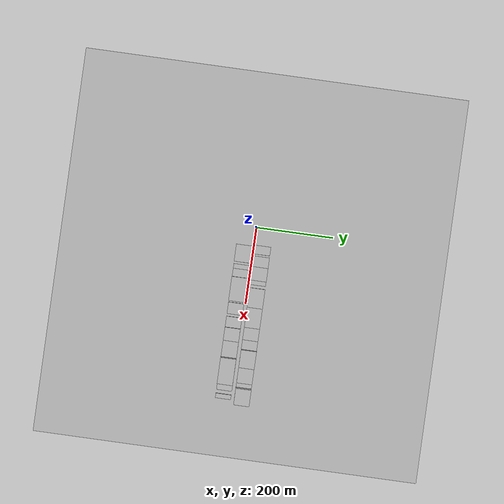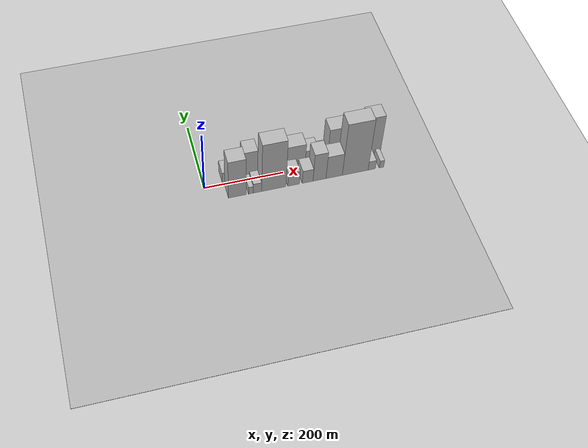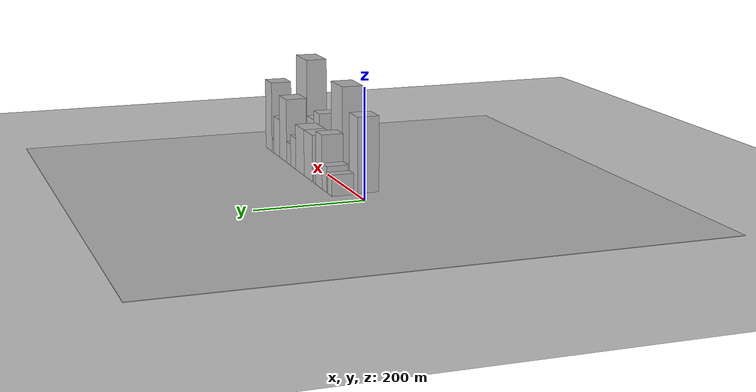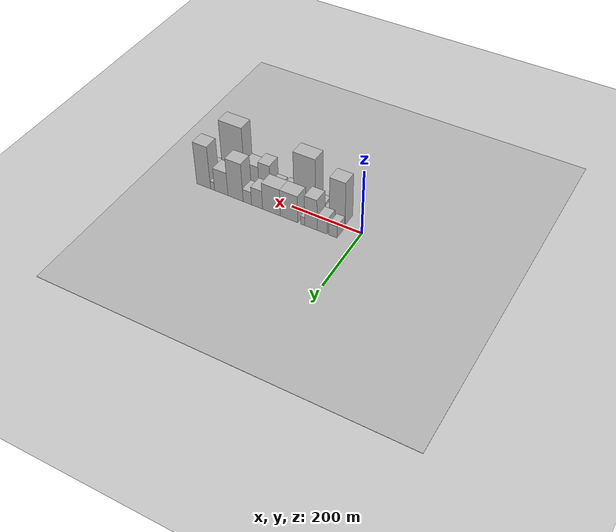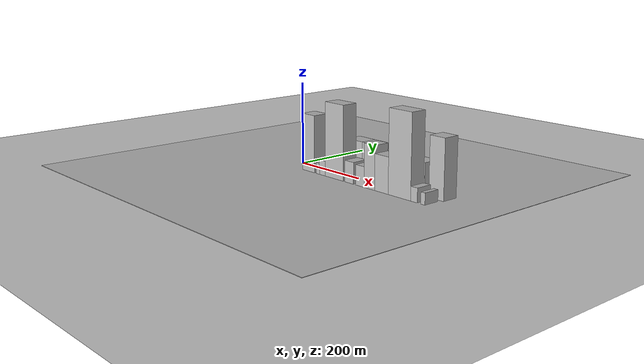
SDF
<?xml version="1.0" encoding="utf-8"?>

<sdf version="1.6">

   <world name="default">

      <gui fullscreen="0">

         <camera name="user_camera">

            <pose>-15 0 4.57585 0 0 0</pose>

            <view_controller>orbit</view_controller>

         </camera>

      </gui>

      <scene>

         <sky>

           <clouds>

             <speed>12</speed>

           </clouds>

         </sky>

         <ambient>0.4 0.4 0.4 1</ambient>

         <background>0.7 0.7 0.7 1</background>

         <shadows>1</shadows>

      </scene>

      <gravity>0 0 -9.8066</gravity>

      <magnetic_field>6e-06 2.3e-05 -4.2e-05</magnetic_field>

      <physics default="0" name="default_physics" type="ode">

         <ode>

            <solver>

               <type>quick</type>

               <iters>10</iters>

               <sor>1.0</sor>

               <use_dynamic_moi_rescaling>0</use_dynamic_moi_rescaling>

            </solver>

            <constraints>

               <cfm>0</cfm>

               <erp>0.2</erp>

               <contact_max_correcting_vel>100</contact_max_correcting_vel>

               <contact_surface_layer>0.001</contact_surface_layer>

            </constraints>

         </ode>

         <max_step_size>0.004</max_step_size>

         <real_time_factor>1</real_time_factor>

         <real_time_update_rate>250</real_time_update_rate>

      </physics>

      <light name="sun" type="directional">

         <cast_shadows>1</cast_shadows>

         <pose>0 0 10 0 0 0</pose>

         <diffuse>0.8 0.8 0.8 1</diffuse>

         <specular>0.2 0.2 0.2 1</specular>

         <attenuation>

            <range>1000</range>

            <constant>0.9</constant>

            <linear>0.01</linear>

            <quadratic>0.001</quadratic>

         </attenuation>

         <direction>-0.5 0.1 -0.9</direction>

      </light>

      <include>

         <name>ground_plane_1</name>

         <uri>model://HANNAS_ground_plane</uri>

         <pose>0 0 0  0 0 0</pose>

      </include>

      <include>

         <name>ground_plane_2</name>

         <uri>model://HANNAS_ground_plane</uri>

         <pose>100 0 0  0 0 0</pose>

      </include>

      <model name="building_1">

         <static>1</static>

         <pose frame="">57.4059 24.5000 0 0.000000 0.000000 1.570796</pose>

         <link name="link">

            <pose frame="">0 0 19.50 0 0 0</pose>

            <collision name="collision">

               <geometry>

                  <box>

                     <size>40.0000 22.8118 39.0000</size>

                  </box>

               </geometry>

               <max_contacts>10</max_contacts>

               <surface>

                  <contact>

                     <ode/>

                  </contact>

                  <bounce/>

                  <friction>

                     <torsional>

                        <ode/>

                     </torsional>

                     <ode/>

                  </friction>

               </surface>

            </collision>

            <visual name="visual">

               <cast_shadows>0</cast_shadows>

               <geometry>

                  <box>

                     <size>40.0000 22.8118 39.0000</size>

                  </box>

               </geometry>

               <material>

                  <script>

                     <uri>model://HANNAS_wall/materials/scripts</uri>

                     <uri>model://HANNAS_wall/materials/textures</uri>

                     <name>vrc/HANNAS_wall</name>

                  </script>

               </material>

            </visual>

            <self_collide>0</self_collide>

            <enable_wind>0</enable_wind>

            <kinematic>0</kinematic>

         </link>

      </model>

      <model name="building_2">

         <static>1</static>

         <pose frame="">87.6651 24.5000 0 0.000000 0.000000 1.570796</pose>

         <link name="link">

            <pose frame="">0 0 24.00 0 0 0</pose>

            <collision name="collision">

               <geometry>

                  <box>

                     <size>40.0000 27.7066 48.0000</size>

                  </box>

               </geometry>

               <max_contacts>10</max_contacts>

               <surface>

                  <contact>

                     <ode/>

                  </contact>

                  <bounce/>

                  <friction>

                     <torsional>

                        <ode/>

                     </torsional>

                     <ode/>

                  </friction>

               </surface>

            </collision>

            <visual name="visual">

               <cast_shadows>0</cast_shadows>

               <geometry>

                  <box>

                     <size>40.0000 27.7066 48.0000</size>

                  </box>

               </geometry>

               <material>

                  <script>

                     <uri>model://HANNAS_wall/materials/scripts</uri>

                     <uri>model://HANNAS_wall/materials/textures</uri>

                     <name>vrc/HANNAS_wall</name>

                  </script>

               </material>

            </visual>

            <self_collide>0</self_collide>

            <enable_wind>0</enable_wind>

            <kinematic>0</kinematic>

         </link>

      </model>

      <model name="building_3">

         <static>1</static>

         <pose frame="">119.0277 24.5000 0 0.000000 0.000000 1.570796</pose>

         <link name="link">

            <pose frame="">0 0 49.50 0 0 0</pose>

            <collision name="collision">

               <geometry>

                  <box>

                     <size>40.0000 35.0186 99.0000</size>

                  </box>

               </geometry>

               <max_contacts>10</max_contacts>

               <surface>

                  <contact>

                     <ode/>

                  </contact>

                  <bounce/>

                  <friction>

                     <torsional>

                        <ode/>

                     </torsional>

                     <ode/>

                  </friction>

               </surface>

            </collision>

            <visual name="visual">

               <cast_shadows>0</cast_shadows>

               <geometry>

                  <box>

                     <size>40.0000 35.0186 99.0000</size>

                  </box>

               </geometry>

               <material>

                  <script>

                     <uri>model://HANNAS_wall/materials/scripts</uri>

                     <uri>model://HANNAS_wall/materials/textures</uri>

                     <name>vrc/HANNAS_wall</name>

                  </script>

               </material>

            </visual>

            <self_collide>0</self_collide>

            <enable_wind>0</enable_wind>

            <kinematic>0</kinematic>

         </link>

      </model>

      <model name="building_4">

         <static>1</static>

         <pose frame="">142.4382 24.5000 0 0.000000 0.000000 1.570796</pose>

         <link name="link">

            <pose frame="">0 0 13.50 0 0 0</pose>

            <collision name="collision">

               <geometry>

                  <box>

                     <size>40.0000 11.8025 27.0000</size>

                  </box>

               </geometry>

               <max_contacts>10</max_contacts>

               <surface>

                  <contact>

                     <ode/>

                  </contact>

                  <bounce/>

                  <friction>

                     <torsional>

                        <ode/>

                     </torsional>

                     <ode/>

                  </friction>

               </surface>

            </collision>

            <visual name="visual">

               <cast_shadows>0</cast_shadows>

               <geometry>

                  <box>

                     <size>40.0000 11.8025 27.0000</size>

                  </box>

               </geometry>

               <material>

                  <script>

                     <uri>model://HANNAS_wall/materials/scripts</uri>

                     <uri>model://HANNAS_wall/materials/textures</uri>

                     <name>vrc/HANNAS_wall</name>

                  </script>

               </material>

            </visual>

            <self_collide>0</self_collide>

            <enable_wind>0</enable_wind>

            <kinematic>0</kinematic>

         </link>

      </model>

      <model name="building_5">

         <static>1</static>

         <pose frame="">181.5953 24.5000 0 0.000000 0.000000 1.570796</pose>

         <link name="link">

            <pose frame="">0 0 43.50 0 0 0</pose>

            <collision name="collision">

               <geometry>

                  <box>

                     <size>40.0000 50.5118 87.0000</size>

                  </box>

               </geometry>

               <max_contacts>10</max_contacts>

               <surface>

                  <contact>

                     <ode/>

                  </contact>

                  <bounce/>

                  <friction>

                     <torsional>

                        <ode/>

                     </torsional>

                     <ode/>

                  </friction>

               </surface>

            </collision>

            <visual name="visual">

               <cast_shadows>0</cast_shadows>

               <geometry>

                  <box>

                     <size>40.0000 50.5118 87.0000</size>

                  </box>

               </geometry>

               <material>

                  <script>

                     <uri>model://HANNAS_wall/materials/scripts</uri>

                     <uri>model://HANNAS_wall/materials/textures</uri>

                     <name>vrc/HANNAS_wall</name>

                  </script>

               </material>

            </visual>

            <self_collide>0</self_collide>

            <enable_wind>0</enable_wind>

            <kinematic>0</kinematic>

         </link>

      </model>

      <model name="building_6">

         <static>1</static>

         <pose frame="">232.8568 24.5000 0 0.000000 0.000000 1.570796</pose>

         <link name="link">

            <pose frame="">0 0 43.50 0 0 0</pose>

            <collision name="collision">

               <geometry>

                  <box>

                     <size>40.0000 52.0113 87.0000</size>

                  </box>

               </geometry>

               <max_contacts>10</max_contacts>

               <surface>

                  <contact>

                     <ode/>

                  </contact>

                  <bounce/>

                  <friction>

                     <torsional>

                        <ode/>

                     </torsional>

                     <ode/>

                  </friction>

               </surface>

            </collision>

            <visual name="visual">

               <cast_shadows>0</cast_shadows>

               <geometry>

                  <box>

                     <size>40.0000 52.0113 87.0000</size>

                  </box>

               </geometry>

               <material>

                  <script>

                     <uri>model://HANNAS_wall/materials/scripts</uri>

                     <uri>model://HANNAS_wall/materials/textures</uri>

                     <name>vrc/HANNAS_wall</name>

                  </script>

               </material>

            </visual>

            <self_collide>0</self_collide>

            <enable_wind>0</enable_wind>

            <kinematic>0</kinematic>

         </link>

      </model>

      <model name="building_7">

         <static>1</static>

         <pose frame="">275.2147 24.5000 0 0.000000 0.000000 1.570796</pose>

         <link name="link">

            <pose frame="">0 0 30.00 0 0 0</pose>

            <collision name="collision">

               <geometry>

                  <box>

                     <size>40.0000 32.7043 60.0000</size>

                  </box>

               </geometry>

               <max_contacts>10</max_contacts>

               <surface>

                  <contact>

                     <ode/>

                  </contact>

                  <bounce/>

                  <friction>

                     <torsional>

                        <ode/>

                     </torsional>

                     <ode/>

                  </friction>

               </surface>

            </collision>

            <visual name="visual">

               <cast_shadows>0</cast_shadows>

               <geometry>

                  <box>

                     <size>40.0000 32.7043 60.0000</size>

                  </box>

               </geometry>

               <material>

                  <script>

                     <uri>model://HANNAS_wall/materials/scripts</uri>

                     <uri>model://HANNAS_wall/materials/textures</uri>

                     <name>vrc/HANNAS_wall</name>

                  </script>

               </material>

            </visual>

            <self_collide>0</self_collide>

            <enable_wind>0</enable_wind>

            <kinematic>0</kinematic>

         </link>

      </model>

      <model name="building_8">

         <static>1</static>

         <pose frame="">304.1273 24.5000 0 0.000000 0.000000 1.570796</pose>

         <link name="link">

            <pose frame="">0 0 21.00 0 0 0</pose>

            <collision name="collision">

               <geometry>

                  <box>

                     <size>40.0000 25.1210 42.0000</size>

                  </box>

               </geometry>

               <max_contacts>10</max_contacts>

               <surface>

                  <contact>

                     <ode/>

                  </contact>

                  <bounce/>

                  <friction>

                     <torsional>

                        <ode/>

                     </torsional>

                     <ode/>

                  </friction>

               </surface>

            </collision>

            <visual name="visual">

               <cast_shadows>0</cast_shadows>

               <geometry>

                  <box>

                     <size>40.0000 25.1210 42.0000</size>

                  </box>

               </geometry>

               <material>

                  <script>

                     <uri>model://HANNAS_wall/materials/scripts</uri>

                     <uri>model://HANNAS_wall/materials/textures</uri>

                     <name>vrc/HANNAS_wall</name>

                  </script>

               </material>

            </visual>

            <self_collide>0</self_collide>

            <enable_wind>0</enable_wind>

            <kinematic>0</kinematic>

         </link>

      </model>

      <model name="building_9">

         <static>1</static>

         <pose frame="">339.6196 24.5000 0 0.000000 0.000000 1.570796</pose>

         <link name="link">

            <pose frame="">0 0 61.50 0 0 0</pose>

            <collision name="collision">

               <geometry>

                  <box>

                     <size>40.0000 45.8636 123.0000</size>

                  </box>

               </geometry>

               <max_contacts>10</max_contacts>

               <surface>

                  <contact>

                     <ode/>

                  </contact>

                  <bounce/>

                  <friction>

                     <torsional>

                        <ode/>

                     </torsional>

                     <ode/>

                  </friction>

               </surface>

            </collision>

            <visual name="visual">

               <cast_shadows>0</cast_shadows>

               <geometry>

                  <box>

                     <size>40.0000 45.8636 123.0000</size>

                  </box>

               </geometry>

               <material>

                  <script>

                     <uri>model://HANNAS_wall/materials/scripts</uri>

                     <uri>model://HANNAS_wall/materials/textures</uri>

                     <name>vrc/HANNAS_wall</name>

                  </script>

               </material>

            </visual>

            <self_collide>0</self_collide>

            <enable_wind>0</enable_wind>

            <kinematic>0</kinematic>

         </link>

      </model>

      <model name="building_10">

         <static>1</static>

         <pose frame="">382.8134 24.5000 0 0.000000 0.000000 1.570796</pose>

         <link name="link">

            <pose frame="">0 0 37.50 0 0 0</pose>

            <collision name="collision">

               <geometry>

                  <box>

                     <size>40.0000 40.5240 75.0000</size>

                  </box>

               </geometry>

               <max_contacts>10</max_contacts>

               <surface>

                  <contact>

                     <ode/>

                  </contact>

                  <bounce/>

                  <friction>

                     <torsional>

                        <ode/>

                     </torsional>

                     <ode/>

                  </friction>

               </surface>

            </collision>

            <visual name="visual">

               <cast_shadows>0</cast_shadows>

               <geometry>

                  <box>

                     <size>40.0000 40.5240 75.0000</size>

                  </box>

               </geometry>

               <material>

                  <script>

                     <uri>model://HANNAS_wall/materials/scripts</uri>

                     <uri>model://HANNAS_wall/materials/textures</uri>

                     <name>vrc/HANNAS_wall</name>

                  </script>

               </material>

            </visual>

            <self_collide>0</self_collide>

            <enable_wind>0</enable_wind>

            <kinematic>0</kinematic>

         </link>

      </model>

      <model name="building_11">

         <static>1</static>

         <pose frame="">409.1963 24.5000 0 0.000000 0.000000 1.570796</pose>

         <link name="link">

            <pose frame="">0 0 13.50 0 0 0</pose>

            <collision name="collision">

               <geometry>

                  <box>

                     <size>40.0000 12.2419 27.0000</size>

                  </box>

               </geometry>

               <max_contacts>10</max_contacts>

               <surface>

                  <contact>

                     <ode/>

                  </contact>

                  <bounce/>

                  <friction>

                     <torsional>

                        <ode/>

                     </torsional>

                     <ode/>

                  </friction>

               </surface>

            </collision>

            <visual name="visual">

               <cast_shadows>0</cast_shadows>

               <geometry>

                  <box>

                     <size>40.0000 12.2419 27.0000</size>

                  </box>

               </geometry>

               <material>

                  <script>

                     <uri>model://HANNAS_wall/materials/scripts</uri>

                     <uri>model://HANNAS_wall/materials/textures</uri>

                     <name>vrc/HANNAS_wall</name>

                  </script>

               </material>

            </visual>

            <self_collide>0</self_collide>

            <enable_wind>0</enable_wind>

            <kinematic>0</kinematic>

         </link>

      </model>

      <model name="building_12">

         <static>1</static>

         <pose frame="">436.6167 24.5000 0 0.000000 0.000000 1.570796</pose>

         <link name="link">

            <pose frame="">0 0 69.00 0 0 0</pose>

            <collision name="collision">

               <geometry>

                  <box>

                     <size>40.0000 42.5987 138.0000</size>

                  </box>

               </geometry>

               <max_contacts>10</max_contacts>

               <surface>

                  <contact>

                     <ode/>

                  </contact>

                  <bounce/>

                  <friction>

                     <torsional>

                        <ode/>

                     </torsional>

                     <ode/>

                  </friction>

               </surface>

            </collision>

            <visual name="visual">

               <cast_shadows>0</cast_shadows>

               <geometry>

                  <box>

                     <size>40.0000 42.5987 138.0000</size>

                  </box>

               </geometry>

               <material>

                  <script>

                     <uri>model://HANNAS_wall/materials/scripts</uri>

                     <uri>model://HANNAS_wall/materials/textures</uri>

                     <name>vrc/HANNAS_wall</name>

                  </script>

               </material>

            </visual>

            <self_collide>0</self_collide>

            <enable_wind>0</enable_wind>

            <kinematic>0</kinematic>

         </link>

      </model>

      <model name="building_13">

         <static>1</static>

         <pose frame="">72.2000 -24.5000 0 0.000000 0.000000 1.570796</pose>

         <link name="link">

            <pose frame="">0 0 69.00 0 0 0</pose>

            <collision name="collision">

               <geometry>

                  <box>

                     <size>40.0000 44.4000 138.0000</size>

                  </box>

               </geometry>

               <max_contacts>10</max_contacts>

               <surface>

                  <contact>

                     <ode/>

                  </contact>

                  <bounce/>

                  <friction>

                     <torsional>

                        <ode/>

                     </torsional>

                     <ode/>

                  </friction>

               </surface>

            </collision>

            <visual name="visual">

               <cast_shadows>0</cast_shadows>

               <geometry>

                  <box>

                     <size>40.0000 44.4000 138.0000</size>

                  </box>

               </geometry>

               <material>

                  <script>

                     <uri>model://HANNAS_wall/materials/scripts</uri>

                     <uri>model://HANNAS_wall/materials/textures</uri>

                     <name>vrc/HANNAS_wall</name>

                  </script>

               </material>

            </visual>

            <self_collide>0</self_collide>

            <enable_wind>0</enable_wind>

            <kinematic>0</kinematic>

         </link>

      </model>

      <model name="building_14">

         <static>1</static>

         <pose frame="">106.4870 -24.5000 0 0.000000 0.000000 1.570796</pose>

         <link name="link">

            <pose frame="">0 0 13.50 0 0 0</pose>

            <collision name="collision">

               <geometry>

                  <box>

                     <size>40.0000 12.1741 27.0000</size>

                  </box>

               </geometry>

               <max_contacts>10</max_contacts>

               <surface>

                  <contact>

                     <ode/>

                  </contact>

                  <bounce/>

                  <friction>

                     <torsional>

                        <ode/>

                     </torsional>

                     <ode/>

                  </friction>

               </surface>

            </collision>

            <visual name="visual">

               <cast_shadows>0</cast_shadows>

               <geometry>

                  <box>

                     <size>40.0000 12.1741 27.0000</size>

                  </box>

               </geometry>

               <material>

                  <script>

                     <uri>model://HANNAS_wall/materials/scripts</uri>

                     <uri>model://HANNAS_wall/materials/textures</uri>

                     <name>vrc/HANNAS_wall</name>

                  </script>

               </material>

            </visual>

            <self_collide>0</self_collide>

            <enable_wind>0</enable_wind>

            <kinematic>0</kinematic>

         </link>

      </model>

      <model name="building_15">

         <static>1</static>

         <pose frame="">123.0718 -24.5000 0 0.000000 0.000000 1.570796</pose>

         <link name="link">

            <pose frame="">0 0 18.00 0 0 0</pose>

            <collision name="collision">

               <geometry>

                  <box>

                     <size>40.0000 20.9955 36.0000</size>

                  </box>

               </geometry>

               <max_contacts>10</max_contacts>

               <surface>

                  <contact>

                     <ode/>

                  </contact>

                  <bounce/>

                  <friction>

                     <torsional>

                        <ode/>

                     </torsional>

                     <ode/>

                  </friction>

               </surface>

            </collision>

            <visual name="visual">

               <cast_shadows>0</cast_shadows>

               <geometry>

                  <box>

                     <size>40.0000 20.9955 36.0000</size>

                  </box>

               </geometry>

               <material>

                  <script>

                     <uri>model://HANNAS_wall/materials/scripts</uri>

                     <uri>model://HANNAS_wall/materials/textures</uri>

                     <name>vrc/HANNAS_wall</name>

                  </script>

               </material>

            </visual>

            <self_collide>0</self_collide>

            <enable_wind>0</enable_wind>

            <kinematic>0</kinematic>

         </link>

      </model>

      <model name="building_16">

         <static>1</static>

         <pose frame="">164.5591 -24.5000 0 0.000000 0.000000 1.570796</pose>

         <link name="link">

            <pose frame="">0 0 88.50 0 0 0</pose>

            <collision name="collision">

               <geometry>

                  <box>

                     <size>40.0000 61.9791 177.0000</size>

                  </box>

               </geometry>

               <max_contacts>10</max_contacts>

               <surface>

                  <contact>

                     <ode/>

                  </contact>

                  <bounce/>

                  <friction>

                     <torsional>

                        <ode/>

                     </torsional>

                     <ode/>

                  </friction>

               </surface>

            </collision>

            <visual name="visual">

               <cast_shadows>0</cast_shadows>

               <geometry>

                  <box>

                     <size>40.0000 61.9791 177.0000</size>

                  </box>

               </geometry>

               <material>

                  <script>

                     <uri>model://HANNAS_wall/materials/scripts</uri>

                     <uri>model://HANNAS_wall/materials/textures</uri>

                     <name>vrc/HANNAS_wall</name>

                  </script>

               </material>

            </visual>

            <self_collide>0</self_collide>

            <enable_wind>0</enable_wind>

            <kinematic>0</kinematic>

         </link>

      </model>

      <model name="building_17">

         <static>1</static>

         <pose frame="">215.4723 -24.5000 0 0.000000 0.000000 1.570796</pose>

         <link name="link">

            <pose frame="">0 0 25.50 0 0 0</pose>

            <collision name="collision">

               <geometry>

                  <box>

                     <size>40.0000 29.8472 51.0000</size>

                  </box>

               </geometry>

               <max_contacts>10</max_contacts>

               <surface>

                  <contact>

                     <ode/>

                  </contact>

                  <bounce/>

                  <friction>

                     <torsional>

                        <ode/>

                     </torsional>

                     <ode/>

                  </friction>

               </surface>

            </collision>

            <visual name="visual">

               <cast_shadows>0</cast_shadows>

               <geometry>

                  <box>

                     <size>40.0000 29.8472 51.0000</size>

                  </box>

               </geometry>

               <material>

                  <script>

                     <uri>model://HANNAS_wall/materials/scripts</uri>

                     <uri>model://HANNAS_wall/materials/textures</uri>

                     <name>vrc/HANNAS_wall</name>

                  </script>

               </material>

            </visual>

            <self_collide>0</self_collide>

            <enable_wind>0</enable_wind>

            <kinematic>0</kinematic>

         </link>

      </model>

      <model name="building_18">

         <static>1</static>

         <pose frame="">251.2572 -24.5000 0 0.000000 0.000000 1.570796</pose>

         <link name="link">

            <pose frame="">0 0 24.00 0 0 0</pose>

            <collision name="collision">

               <geometry>

                  <box>

                     <size>40.0000 27.7226 48.0000</size>

                  </box>

               </geometry>

               <max_contacts>10</max_contacts>

               <surface>

                  <contact>

                     <ode/>

                  </contact>

                  <bounce/>

                  <friction>

                     <torsional>

                        <ode/>

                     </torsional>

                     <ode/>

                  </friction>

               </surface>

            </collision>

            <visual name="visual">

               <cast_shadows>0</cast_shadows>

               <geometry>

                  <box>

                     <size>40.0000 27.7226 48.0000</size>

                  </box>

               </geometry>

               <material>

                  <script>

                     <uri>model://HANNAS_wall/materials/scripts</uri>

                     <uri>model://HANNAS_wall/materials/textures</uri>

                     <name>vrc/HANNAS_wall</name>

                  </script>

               </material>

            </visual>

            <self_collide>0</self_collide>

            <enable_wind>0</enable_wind>

            <kinematic>0</kinematic>

         </link>

      </model>

      <model name="building_19">

         <static>1</static>

         <pose frame="">282.0122 -24.5000 0 0.000000 0.000000 1.570796</pose>

         <link name="link">

            <pose frame="">0 0 51.00 0 0 0</pose>

            <collision name="collision">

               <geometry>

                  <box>

                     <size>40.0000 33.7875 102.0000</size>

                  </box>

               </geometry>

               <max_contacts>10</max_contacts>

               <surface>

                  <contact>

                     <ode/>

                  </contact>

                  <bounce/>

                  <friction>

                     <torsional>

                        <ode/>

                     </torsional>

                     <ode/>

                  </friction>

               </surface>

            </collision>

            <visual name="visual">

               <cast_shadows>0</cast_shadows>

               <geometry>

                  <box>

                     <size>40.0000 33.7875 102.0000</size>

                  </box>

               </geometry>

               <material>

                  <script>

                     <uri>model://HANNAS_wall/materials/scripts</uri>

                     <uri>model://HANNAS_wall/materials/textures</uri>

                     <name>vrc/HANNAS_wall</name>

                  </script>

               </material>

            </visual>

            <self_collide>0</self_collide>

            <enable_wind>0</enable_wind>

            <kinematic>0</kinematic>

         </link>

      </model>

      <model name="building_20">

         <static>1</static>

         <pose frame="">320.0887 -24.5000 0 0.000000 0.000000 1.570796</pose>

         <link name="link">

            <pose frame="">0 0 42.00 0 0 0</pose>

            <collision name="collision">

               <geometry>

                  <box>

                     <size>40.0000 42.3654 84.0000</size>

                  </box>

               </geometry>

               <max_contacts>10</max_contacts>

               <surface>

                  <contact>

                     <ode/>

                  </contact>

                  <bounce/>

                  <friction>

                     <torsional>

                        <ode/>

                     </torsional>

                     <ode/>

                  </friction>

               </surface>

            </collision>

            <visual name="visual">

               <cast_shadows>0</cast_shadows>

               <geometry>

                  <box>

                     <size>40.0000 42.3654 84.0000</size>

                  </box>

               </geometry>

               <material>

                  <script>

                     <uri>model://HANNAS_wall/materials/scripts</uri>

                     <uri>model://HANNAS_wall/materials/textures</uri>

                     <name>vrc/HANNAS_wall</name>

                  </script>

               </material>

            </visual>

            <self_collide>0</self_collide>

            <enable_wind>0</enable_wind>

            <kinematic>0</kinematic>

         </link>

      </model>

      <model name="building_21">

         <static>1</static>

         <pose frame="">374.9813 -24.5000 0 0.000000 0.000000 1.570796</pose>

         <link name="link">

            <pose frame="">0 0 96.00 0 0 0</pose>

            <collision name="collision">

               <geometry>

                  <box>

                     <size>40.0000 67.4198 192.0000</size>

                  </box>

               </geometry>

               <max_contacts>10</max_contacts>

               <surface>

                  <contact>

                     <ode/>

                  </contact>

                  <bounce/>

                  <friction>

                     <torsional>

                        <ode/>

                     </torsional>

                     <ode/>

                  </friction>

               </surface>

            </collision>

            <visual name="visual">

               <cast_shadows>0</cast_shadows>

               <geometry>

                  <box>

                     <size>40.0000 67.4198 192.0000</size>

                  </box>

               </geometry>

               <material>

                  <script>

                     <uri>model://HANNAS_wall/materials/scripts</uri>

                     <uri>model://HANNAS_wall/materials/textures</uri>

                     <name>vrc/HANNAS_wall</name>

                  </script>

               </material>

            </visual>

            <self_collide>0</self_collide>

            <enable_wind>0</enable_wind>

            <kinematic>0</kinematic>

         </link>

      </model>

      <model name="building_22">

         <static>1</static>

         <pose frame="">418.4015 -24.5000 0 0.000000 0.000000 1.570796</pose>

         <link name="link">

            <pose frame="">0 0 16.50 0 0 0</pose>

            <collision name="collision">

               <geometry>

                  <box>

                     <size>40.0000 19.4208 33.0000</size>

                  </box>

               </geometry>

               <max_contacts>10</max_contacts>

               <surface>

                  <contact>

                     <ode/>

                  </contact>

                  <bounce/>

                  <friction>

                     <torsional>

                        <ode/>

                     </torsional>

                     <ode/>

                  </friction>

               </surface>

            </collision>

            <visual name="visual">

               <cast_shadows>0</cast_shadows>

               <geometry>

                  <box>

                     <size>40.0000 19.4208 33.0000</size>

                  </box>

               </geometry>

               <material>

                  <script>

                     <uri>model://HANNAS_wall/materials/scripts</uri>

                     <uri>model://HANNAS_wall/materials/textures</uri>

                     <name>vrc/HANNAS_wall</name>

                  </script>

               </material>

            </visual>

            <self_collide>0</self_collide>

            <enable_wind>0</enable_wind>

            <kinematic>0</kinematic>

         </link>

      </model>

      <model name="building_23">

         <static>1</static>

         <pose frame="">444.0371 -24.5000 0 0.000000 0.000000 1.570796</pose>

         <link name="link">

            <pose frame="">0 0 13.50 0 0 0</pose>

            <collision name="collision">

               <geometry>

                  <box>

                     <size>40.0000 11.8504 27.0000</size>

                  </box>

               </geometry>

               <max_contacts>10</max_contacts>

               <surface>

                  <contact>

                     <ode/>

                  </contact>

                  <bounce/>

                  <friction>

                     <torsional>

                        <ode/>

                     </torsional>

                     <ode/>

                  </friction>

               </surface>

            </collision>

            <visual name="visual">

               <cast_shadows>0</cast_shadows>

               <geometry>

                  <box>

                     <size>40.0000 11.8504 27.0000</size>

                  </box>

               </geometry>

               <material>

                  <script>

                     <uri>model://HANNAS_wall/materials/scripts</uri>

                     <uri>model://HANNAS_wall/materials/textures</uri>

                     <name>vrc/HANNAS_wall</name>

                  </script>

               </material>

            </visual>

            <self_collide>0</self_collide>

            <enable_wind>0</enable_wind>

            <kinematic>0</kinematic>

         </link>

      </model>

   </world>

</sdf>

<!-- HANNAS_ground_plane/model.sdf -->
<sdf version="1.4">
<model name="HANNAS_ground_plane">
  <static>true</static>
    <link name="link">
      <collision name="collision">
        <geometry>
          <plane>
            <normal>0 0 1</normal>
            <size>1000 1000</size>
          </plane>
        </geometry>
        <surface>
          <friction>
            <ode>
              <mu>100</mu>
              <mu2>50</mu2>
            </ode>
          </friction>
        </surface>
      </collision>
      <visual name="visual">
        <cast_shadows>false</cast_shadows>
        <geometry>
          <plane>
            <normal>0 0 1</normal>
            <size>1000 1000</size>
          </plane>
        </geometry>
        <material>
          <script>
            <uri>model://HANNAS_ground_plane/materials/scripts/HANNAS_ground_plane.material</uri>
	    <uri>model://HANNAS_ground_plane/materials/textures</uri>
            <name>HANNASGroundPlane/Image</name>
          </script>
        </material>
      </visual>
    </link>
  </model>
</sdf>
